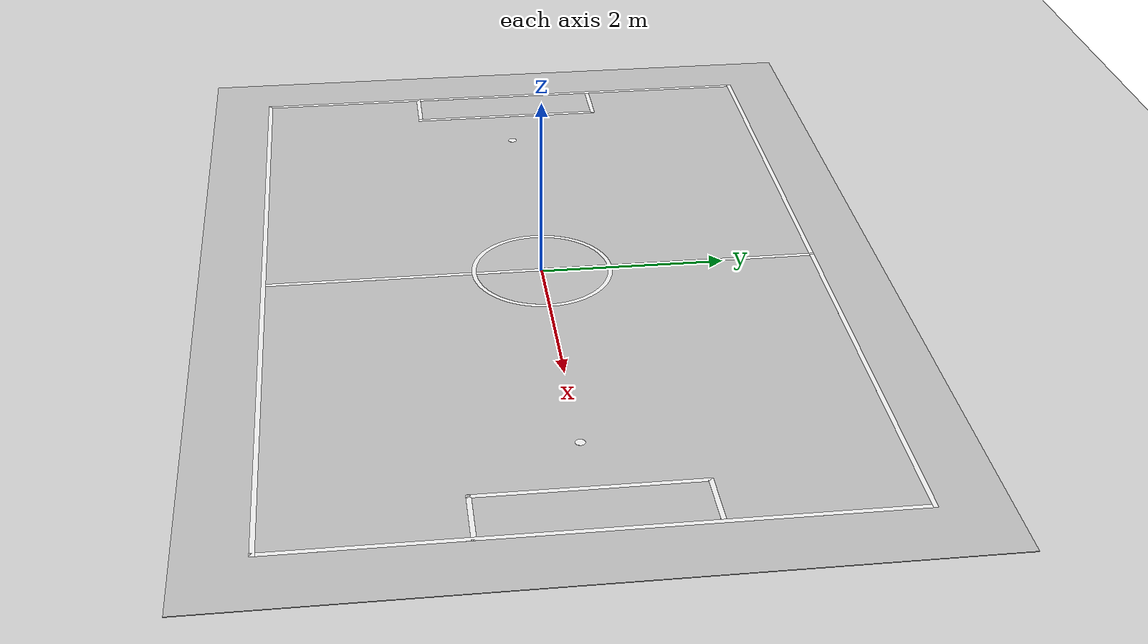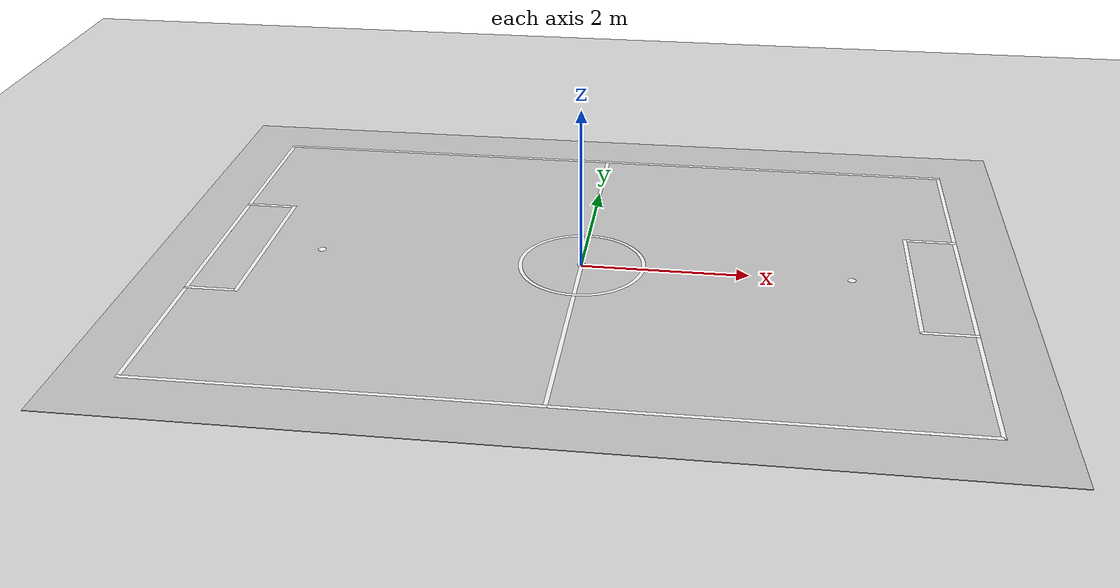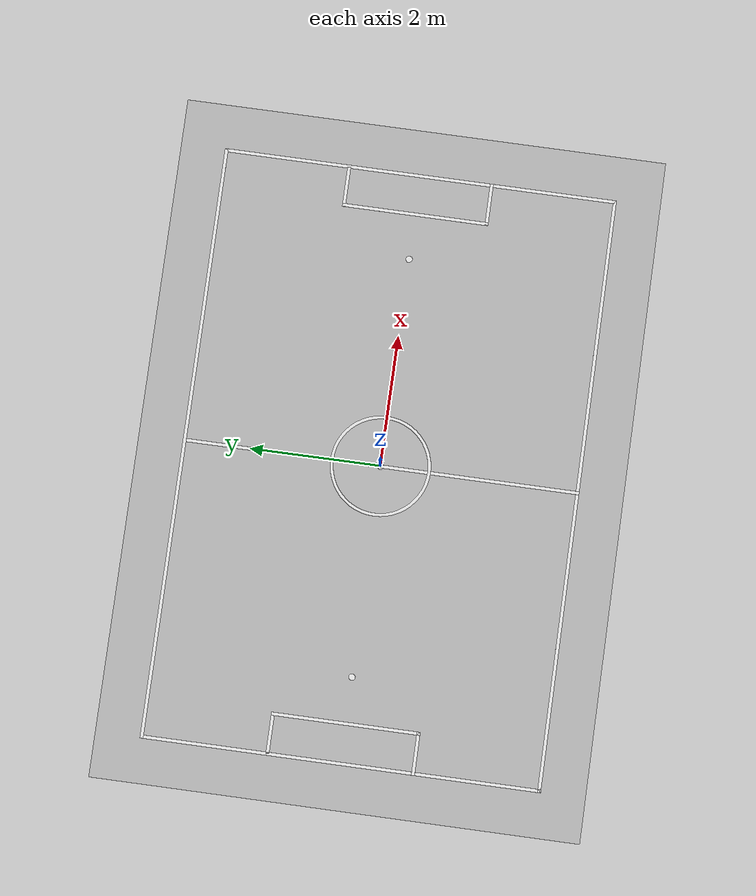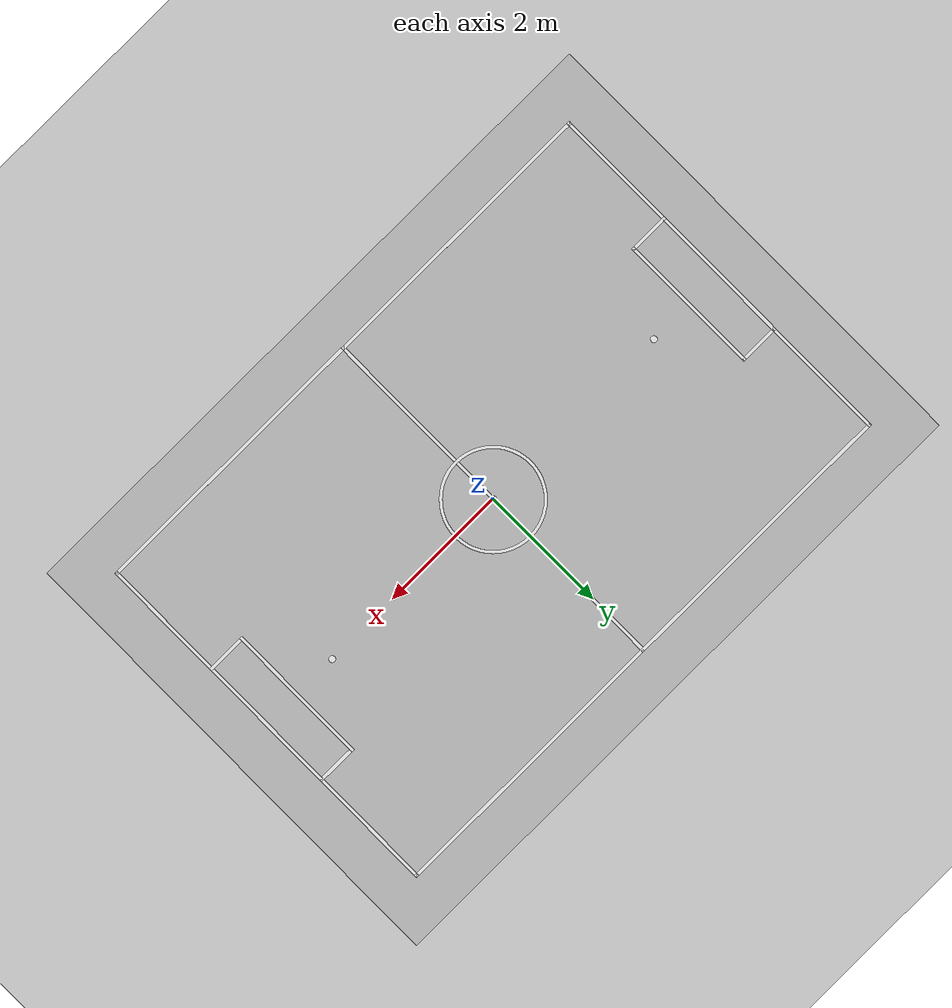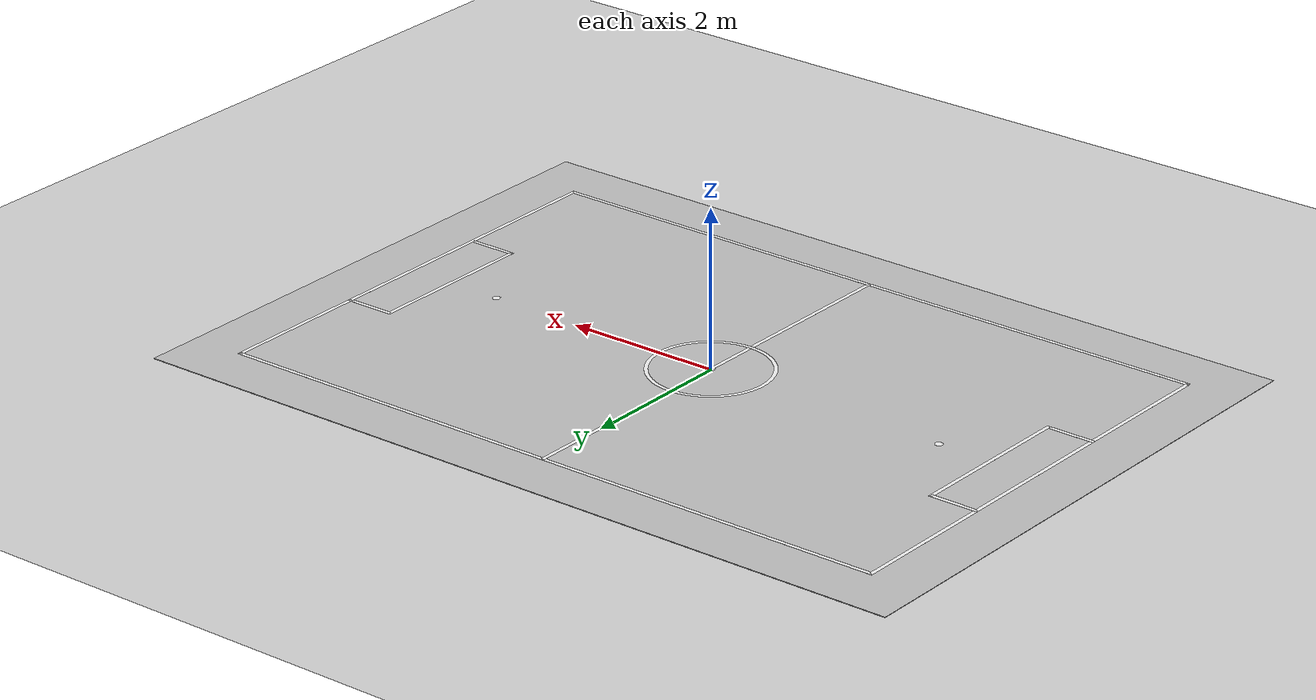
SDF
<sdf version="1.4">
 <world name="default">
  <light name="sun" type="directional">
   <pose>0 0 10 0 -0 0</pose>
   <diffuse>0.8 0.8 0.8 1</diffuse>
   <specular>0.2 0.2 0.2 1</specular>
   <attenuation>
    <range>1000</range>
    <constant>0.9</constant>
    <linear>0.01</linear>
    <quadratic>0.001</quadratic>
   </attenuation>
   <direction>-0.5 0.1 -0.9</direction>
  </light>
  <model name="ground_plane">
   <static>1</static>
   <link name="link">
    <collision name="collision">
     <geometry><plane><normal>0 0 1</normal><size>100 100</size></plane></geometry>
     <surface><friction><ode><mu>100</mu><mu2>50</mu2></ode></friction></surface>
    </collision>
    <visual name="visual">
     <cast_shadows>0</cast_shadows>
     <geometry><plane><normal>0 0 1</normal><size>100 100</size></plane></geometry>
     <material>
      <script><uri>file://media/materials/scripts/gazebo.material</uri><name>Gazebo/Grey</name></script>
     </material>
    </visual>
    <velocity_decay><linear>0</linear><angular>0</angular></velocity_decay>
   </link>
  </model>
  <physics type="ode">
   <max_step_size>0.001</max_step_size>
   <real_time_factor>1</real_time_factor>
   <real_time_update_rate>1000</real_time_update_rate>
   <gravity>0 0 -9.8</gravity>
  </physics>
  <scene><ambient>0.4 0.4 0.4 1</ambient><background>0.7 0.7 0.7 1</background><shadows>1</shadows></scene>
  <spherical_coordinates>
   <surface_model>EARTH_WGS84</surface_model>
   <latitude_deg>0</latitude_deg>
   <longitude_deg>0</longitude_deg>
   <elevation>0</elevation>
   <heading_deg>0</heading_deg>
  </spherical_coordinates>
  <model name="RoboCup 14 SPL Field">
   <static>1</static>
   <link name="field">
    <pose>0 0 0.01 0 -0 0</pose>
    <collision name="collision">
     <geometry><plane><normal>0 0 1</normal><size>10.4 7.4</size></plane></geometry>
     <surface><friction><ode><mu>0.2</mu><mu2>0.2</mu2></ode></friction></surface>
    </collision>
    <visual name="carpet">
     <cast_shadows>0</cast_shadows>
     <geometry><plane><normal>0 0 1</normal><size>10.4 7.4</size></plane></geometry>
     <material>
      <script>
       <uri>model://robocup09_spl_field/materials/scripts/</uri>
       <uri>model://robocup09_spl_field/materials/textures/</uri>
       <name>RoboCup/Carpet</name>
      </script>
     </material>
    </visual>
    <visual name="sideline_1">
     <pose>0 3 0.011 0 -0 0</pose>
     <cast_shadows>0</cast_shadows>
     <geometry><plane><normal>0 0 1</normal><size>9.05 0.05</size></plane></geometry>
     <material>
      <script><uri>file://media/materials/scripts/gazebo.material</uri><name>Gazebo/White</name></script>
     </material>
    </visual>
    <visual name="sideline_2">
     <pose>0 -3 0.011 0 -0 0</pose>
     <cast_shadows>0</cast_shadows>
     <geometry><plane><normal>0 0 1</normal><size>9.05 0.05</size></plane></geometry>
     <material>
      <script><uri>file://media/materials/scripts/gazebo.material</uri><name>Gazebo/White</name></script>
     </material>
    </visual>
    <visual name="endline_1">
     <pose>-4.5 0 0.011 0 -0 0</pose>
     <cast_shadows>0</cast_shadows>
     <geometry><plane><normal>0 0 1</normal><size>0.05 6.05</size></plane></geometry>
     <material>
      <script><uri>file://media/materials/scripts/gazebo.material</uri><name>Gazebo/White</name></script>
     </material>
    </visual>
    <visual name="endline_2">
     <pose>4.5 0 0.011 0 -0 0</pose>
     <cast_shadows>0</cast_shadows>
     <geometry><plane><normal>0 0 1</normal><size>0.05 6.05</size></plane></geometry>
     <material>
      <script><uri>file://media/materials/scripts/gazebo.material</uri><name>Gazebo/White</name></script>
     </material>
    </visual>
    <visual name="halfway_line">
     <pose>0 0 0.011 0 -0 0</pose>
     <cast_shadows>0</cast_shadows>
     <geometry><plane><normal>0 0 1</normal><size>0.05 6.05</size></plane></geometry>
     <material>
      <script><uri>file://media/materials/scripts/gazebo.material</uri><name>Gazebo/White</name></script>
     </material>
    </visual>
    <visual name="area_1_line_a">
     <pose>-3.9 0 0.011 0 -0 0</pose>
     <cast_shadows>0</cast_shadows>
     <geometry><plane><normal>0 0 1</normal><size>0.05 2.25</size></plane></geometry>
     <material>
      <script><uri>file://media/materials/scripts/gazebo.material</uri><name>Gazebo/White</name></script>
     </material>
    </visual>
    <visual name="area_2_line_a">
     <pose>-4.2 1.1 0.011 0 -0 0</pose>
     <cast_shadows>0</cast_shadows>
     <geometry><plane><normal>0 0 1</normal><size>0.65 0.05</size></plane></geometry>
     <material>
      <script><uri>file://media/materials/scripts/gazebo.material</uri><name>Gazebo/White</name></script>
     </material>
    </visual>
    <visual name="area_3_line_a">
     <pose>-4.2 -1.1 0.011 0 -0 0</pose>
     <cast_shadows>0</cast_shadows>
     <geometry><plane><normal>0 0 1</normal><size>0.65 0.05</size></plane></geometry>
     <material>
      <script><uri>file://media/materials/scripts/gazebo.material</uri><name>Gazebo/White</name></script>
     </material>
    </visual>
    <visual name="area_1_line_b">
     <pose>3.9 0 0.011 0 -0 0</pose>
     <cast_shadows>0</cast_shadows>
     <geometry><plane><normal>0 0 1</normal><size>0.05 2.25</size></plane></geometry>
     <material>
      <script><uri>file://media/materials/scripts/gazebo.material</uri><name>Gazebo/White</name></script>
     </material>
    </visual>
    <visual name="area_2_line_b">
     <pose>4.2 1.1 0.011 0 -0 0</pose>
     <cast_shadows>0</cast_shadows>
     <geometry><plane><normal>0 0 1</normal><size>0.65 0.05</size></plane></geometry>
     <material>
      <script><uri>file://media/materials/scripts/gazebo.material</uri><name>Gazebo/White</name></script>
     </material>
    </visual>
    <visual name="area_3_line_b">
     <pose>4.2 -1.1 0.011 0 -0 0</pose>
     <cast_shadows>0</cast_shadows>
     <geometry><plane><normal>0 0 1</normal><size>0.65 0.05</size></plane></geometry>
     <material>
      <script><uri>file://media/materials/scripts/gazebo.material</uri><name>Gazebo/White</name></script>
     </material>
    </visual>
    <visual name="penalty_a">
     <pose>-3.2 0 0.01 0 -0 0</pose>
     <cast_shadows>0</cast_shadows>
     <geometry><cylinder><radius>0.05</radius><length>0.0005</length></cylinder></geometry>
     <material>
      <script><uri>file://media/materials/scripts/gazebo.material</uri><name>Gazebo/White</name></script>
     </material>
    </visual>
    <visual name="penalty_b">
     <pose>3.2 0 0.01 0 -0 0</pose>
     <cast_shadows>0</cast_shadows>
     <geometry><cylinder><radius>0.05</radius><length>0.0005</length></cylinder></geometry>
     <material>
      <script><uri>file://media/materials/scripts/gazebo.material</uri><name>Gazebo/White</name></script>
     </material>
    </visual>
    <visual name="center_point">
     <pose>0 0 0.01 0 -0 0</pose>
     <cast_shadows>0</cast_shadows>
     <geometry><cylinder><radius>0.05</radius><length>0.0005</length></cylinder></geometry>
     <material>
      <script><uri>file://media/materials/scripts/gazebo.material</uri><name>Gazebo/White</name></script>
     </material>
    </visual>
    <visual name="center_circle">
     <pose>0 0 0.005 0 -0 0</pose>
     <cast_shadows>0</cast_shadows>
     <geometry>
      <mesh><scale>1 1 0.75</scale><uri>model://robocup14_spl_field/meshes/circle.dae</uri></mesh>
     </geometry>
     <material>
      <script><uri>file://media/materials/scripts/gazebo.material</uri><name>Gazebo/White</name></script>
     </material>
    </visual>
    <velocity_decay><linear>0</linear><angular>0</angular></velocity_decay>
   </link>
  </model>
 </world>
</sdf>
